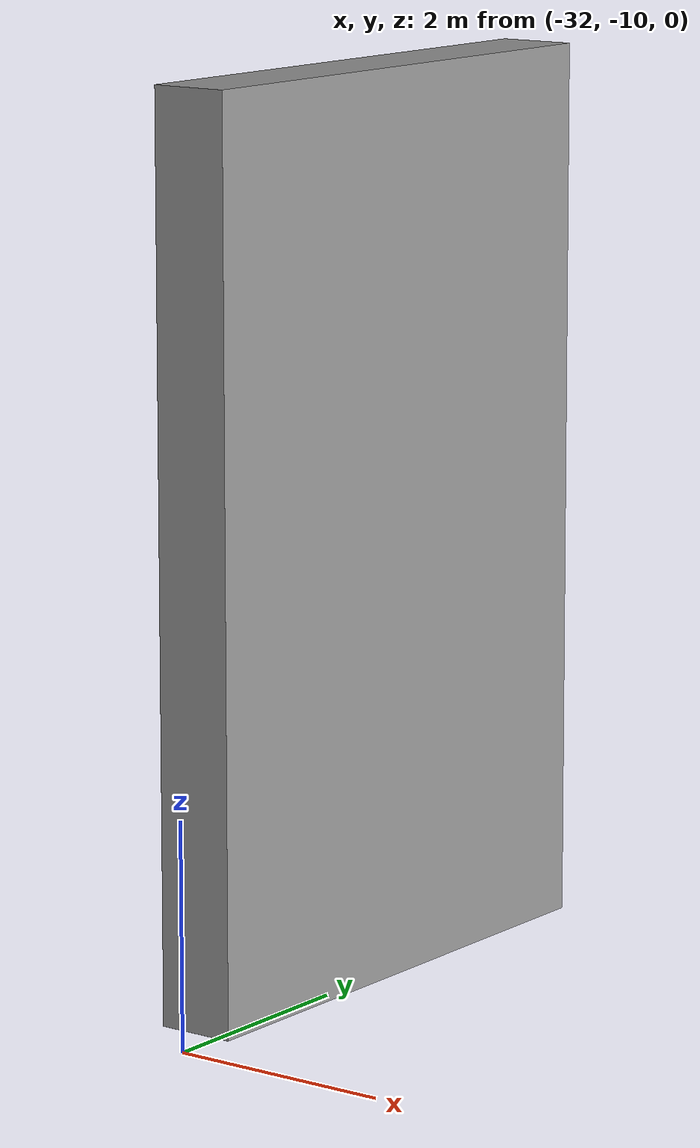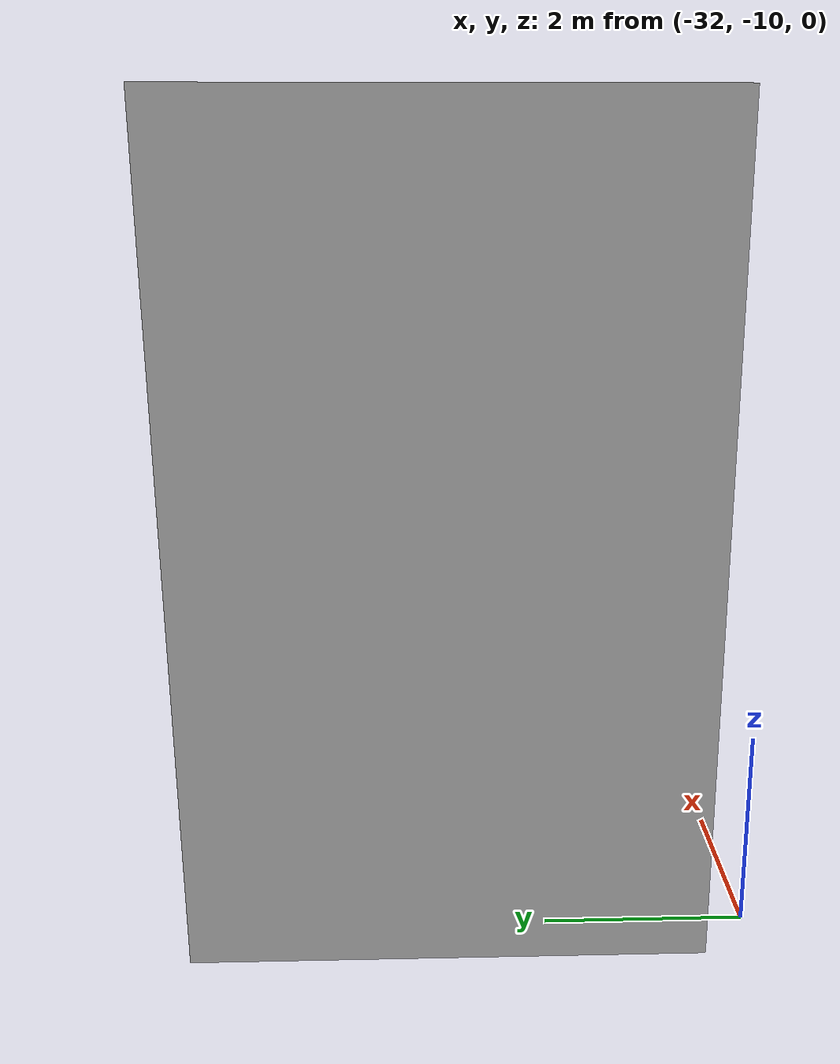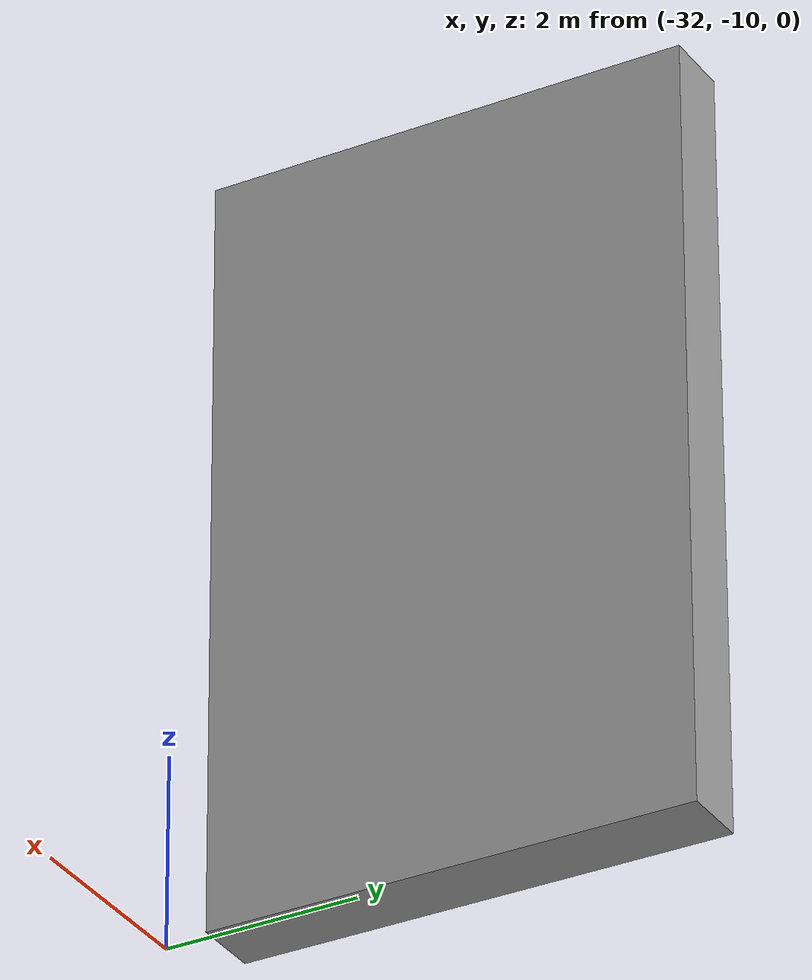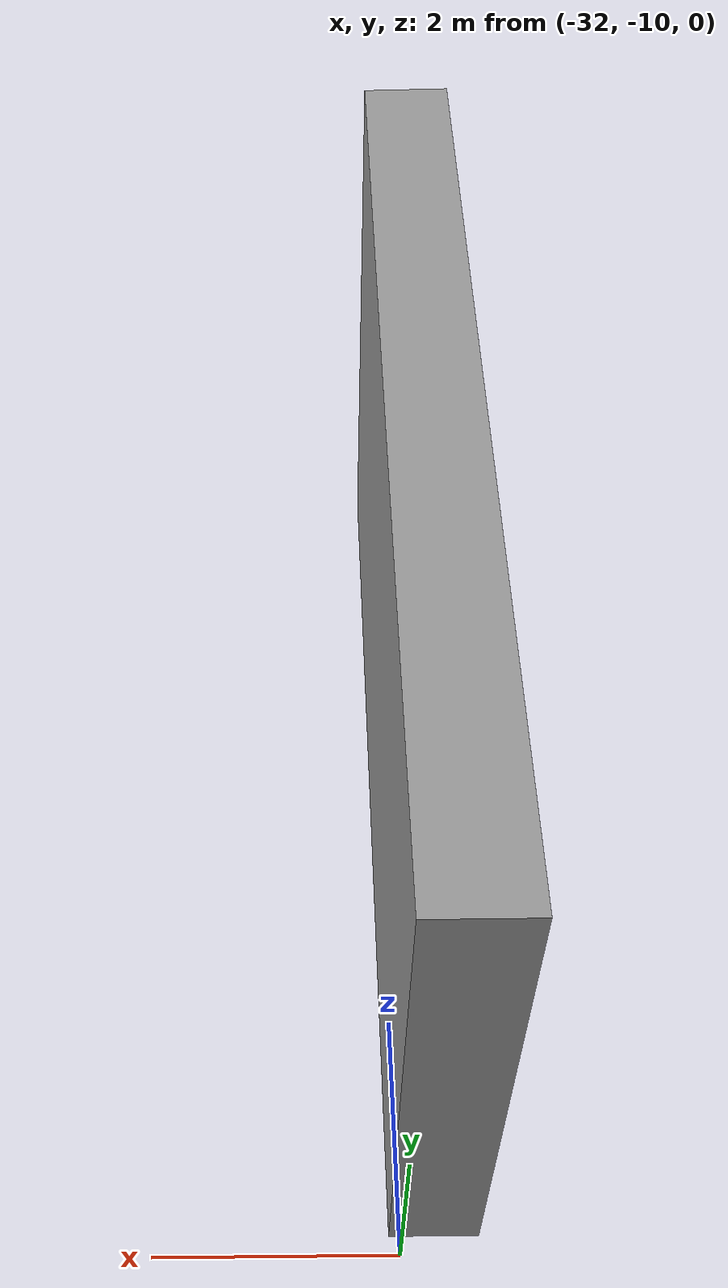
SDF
<?xml version='1.0'?>
<sdf version='1.7'>
  <model name='wall_short_5x8'>
    <pose>-16.2968 -4.76001 0 0 -0 0</pose>
    <link name='Wall_2'>
      <collision name='Wall_2_Collision'>
        <geometry>
          <box>
            <size>5 0.7 8</size>
          </box>
        </geometry>
        <pose>0 0 4 0 -0 0</pose>
      </collision>
      <visual name='Wall_2_Visual'>
        <pose>0 0 4 0 -0 0</pose>
        <geometry>
          <box>
            <size>5 0.7 8</size>
          </box>
        </geometry>
        <material>
          <script>
            <uri>file://media/materials/scripts/gazebo.material</uri>
            <name>Gazebo/Grey</name>
          </script>
          <ambient>1 1 1 1</ambient>
        </material>
        <meta>
          <layer>0</layer>
        </meta>
      </visual>
      <pose>-15.9468 -2.26001 0 0 -0 -1.5708</pose>
    </link>
    <static>1</static>
  </model>
</sdf>
